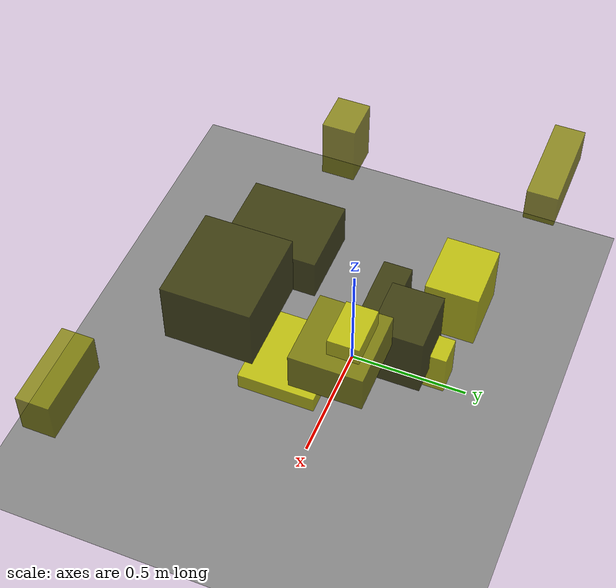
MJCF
<?xml version="1.0"?>
<mujoco model="obstacle_scene">
  <compiler angle="radian" coordinate="local"/>
  <option timestep="0.001" gravity="0 0 -9.81"/>

  <asset>
    <material name="obstacle_mat" rgba="0.8 0.8 0.0 0.8"/>
    <material name="ground_mat" rgba="0.5 0.5 0.5 1"/>
  </asset>

  <worldbody>
    <!-- Ground plane -->
    <geom name="ground" type="plane" size="3 3 0.1" material="ground_mat"/>

    <!-- Obstacles -->
    <body name="obstacle_0" pos="0.253662 0.300625 0.573903">
      <geom name="obs_0" type="box" size="0.121490 0.102575 0.134411" rgba="0.2 0.2 0.0 0.8"/>
    </body>
    <body name="obstacle_1" pos="-0.674552 0.595822 0.677537">
      <geom name="obs_1" type="box" size="0.203495 0.062957 0.073693" rgba="0.5 0.5 0.0 0.8"/>
    </body>
    <body name="obstacle_2" pos="0.763653 0.272358 1.178963">
      <geom name="obs_2" type="box" size="0.086632 0.055298 0.034487" rgba="0.8 0.8 0.0 0.8"/>
    </body>
    <body name="obstacle_3" pos="0.666670 -0.210156 1.075239">
      <geom name="obs_3" type="box" size="0.177882 0.160070 0.121807" rgba="0.2 0.2 0.0 0.8"/>
    </body>
    <body name="obstacle_4" pos="0.669627 0.198199 0.933695">
      <geom name="obs_4" type="box" size="0.144583 0.133058 0.075542" rgba="0.5 0.5 0.0 0.8"/>
    </body>
    <body name="obstacle_5" pos="0.207922 0.324204 0.421456">
      <geom name="obs_5" type="box" size="0.054885 0.143512 0.091797" rgba="0.8 0.8 0.0 0.8"/>
    </body>
    <body name="obstacle_6" pos="0.086394 0.141254 0.419917">
      <geom name="obs_6" type="box" size="0.200744 0.059269 0.099355" rgba="0.2 0.2 0.0 0.8"/>
    </body>
    <body name="obstacle_7" pos="-0.524357 -0.243934 0.703624">
      <geom name="obs_7" type="box" size="0.086503 0.068301 0.130569" rgba="0.5 0.5 0.0 0.8"/>
    </body>
    <body name="obstacle_8" pos="-0.013243 0.423284 0.603564">
      <geom name="obs_8" type="box" size="0.130419 0.103851 0.122283" rgba="0.8 0.8 0.0 0.8"/>
    </body>
    <body name="obstacle_9" pos="0.282948 -0.168504 0.952148">
      <geom name="obs_9" type="box" size="0.145358 0.174076 0.081942" rgba="0.2 0.2 0.0 0.8"/>
    </body>
    <body name="obstacle_10" pos="0.828504 -0.874237 0.410909">
      <geom name="obs_10" type="box" size="0.177157 0.068780 0.090895" rgba="0.5 0.5 0.0 0.8"/>
    </body>
    <body name="obstacle_11" pos="0.506926 -0.048236 0.572032">
      <geom name="obs_11" type="box" size="0.166479 0.147733 0.034310" rgba="0.8 0.8 0.0 0.8"/>
    </body>
  </worldbody>
</mujoco>
